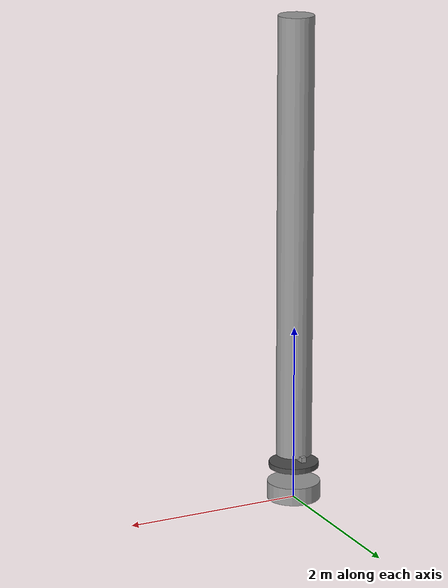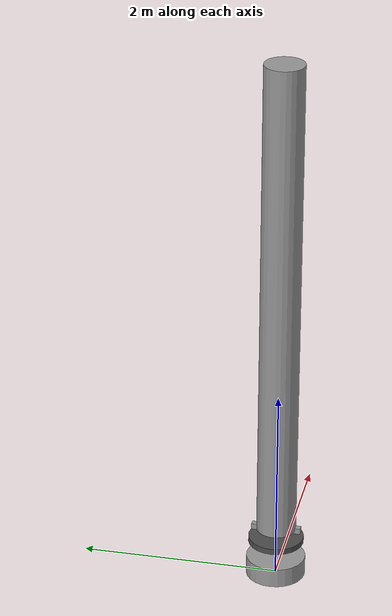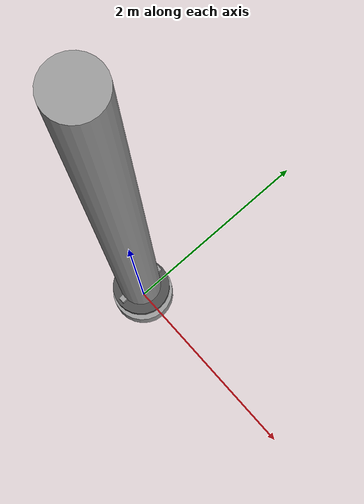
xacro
<?xml version="1.0"?>
<robot name="underwater_spotlight_gimbal" xmlns:xacro="http://www.ros.org/wiki/xacro">

  <!-- Optional parameters -->
  <xacro:arg name="use_ignition" default="false"/>
  <xacro:property name="ns" value="/spotlight"/>

  <!-- Materials -->
  <material name="Grey"><color rgba="0.6 0.6 0.6 1.0"/></material>
  <material name="DarkGrey"><color rgba="0.3 0.3 0.3 1.0"/></material>

  <!-- 1) base_link -->
  <link name="base_link">
    <inertial>
      <origin xyz="0 0 0" rpy="0 0 0"/>
      <mass value="1.0"/>
      <inertia ixx="0.01" ixy="0" ixz="0" iyy="0.01" iyz="0" izz="0.01"/>
    </inertial>
    <visual>
      <origin xyz="0 0 0.1" rpy="0 0 0"/>
      <geometry><cylinder radius="0.3" length="0.2"/></geometry>
      <material name="Grey"/>
    </visual>
    <collision>
      <origin xyz="0 0 0.1" rpy="0 0 0"/>
      <geometry><cylinder radius="0.3" length="0.2"/></geometry>
    </collision>
  </link>

  <!-- 2) yaw_link -->
  <link name="yaw_link">
    <inertial>
      <origin xyz="0 0 0.2" rpy="0 0 0"/>
      <mass value="0.5"/>
      <inertia ixx="0.005" ixy="0" ixz="0" iyy="0.005" iyz="0" izz="0.005"/>
    </inertial>
    <visual>
      <origin xyz="0 0 0.2" rpy="0 0 0"/>
      <geometry><cylinder radius="0.28" length="0.06"/></geometry>
      <material name="DarkGrey"/>
    </visual>
    <collision>
      <origin xyz="0 0 0.2" rpy="0 0 0"/>
      <geometry><cylinder radius="0.28" length="0.06"/></geometry>
    </collision>
  </link>

  <!-- 3) pitch_link -->
  <link name="pitch_link">
    <inertial>
      <origin xyz="0 0 0.26" rpy="0 0 0"/>
      <mass value="0.3"/>
      <inertia ixx="0.003" ixy="0" ixz="0" iyy="0.003" iyz="0" izz="0.003"/>
    </inertial>
    <visual>
      <origin xyz="0 0 0.26" rpy="0 0 0"/>
      <geometry><box size="0.06 0.5 0.06"/></geometry>
      <material name="Grey"/>
    </visual>
    <collision>
      <origin xyz="0 0 0.26" rpy="0 0 0"/>
      <geometry><box size="0.06 0.5 0.06"/></geometry>
    </collision>
  </link>

  <!-- 4) spotlight_link (lamp body) -->
  <link name="spotlight_link">
    <inertial>
      <origin xyz="0 0 0.26" rpy="0 0 0"/>
      <mass value="1.0"/>
      <inertia ixx="0.02" ixy="0" ixz="0" iyy="0.02" iyz="0" izz="0.02"/>
    </inertial>
    <visual>
      <origin xyz="0 0 2.76" rpy="0 0 0"/> <!-- length 5.0, center at 2.5, raised an extra 0.26 above pitch_link, total 2.76 -->
      <geometry><cylinder radius="0.2" length="5.0"/></geometry>
      <material name="Grey"/>
    </visual>
    <collision>
      <origin xyz="0 0 2.76" rpy="0 0 0"/>
      <geometry><cylinder radius="0.2" length="5.0"/></geometry>
    </collision>
  </link>

  <!-- joints -->
  <!-- yaw (rotation about the Z axis) -->
  <joint name="base_yaw_joint" type="revolute">
    <parent link="base_link"/>
    <child link="yaw_link"/>
    <origin xyz="0 0 0.2" rpy="0 0 0"/>
    <axis xyz="0 0 1"/>
    <limit lower="-3.14159" upper="3.14159" effort="10" velocity="2.0"/>
    <dynamics damping="0.1" friction="0.0"/>
  </joint>

  <!-- pitch (rotation about the Y axis) -->
  <joint name="head_pitch_joint" type="revolute">
    <parent link="yaw_link"/>
    <child link="pitch_link"/>
    <origin xyz="0 0 0.06" rpy="0 0 0"/> <!-- fine adjustment from the top of yaw_link to the pitch_link axis -->
    <axis xyz="0 1 0"/>
    <limit lower="-1.2" upper="1.2" effort="10" velocity="2.0"/>
    <dynamics damping="0.1" friction="0.0"/>
  </joint>

  <!-- Fix the lamp body -->
  <joint name="pitch_to_spotlight" type="fixed">
    <parent link="pitch_link"/>
    <child link="spotlight_link"/>
    <origin xyz="0 0 0" rpy="0 0 0"/>
  </joint>

<!-- Gazebo control plugin -->
<gazebo>
  <plugin name="gazebo_ros_control" filename="libgazebo_ros_control.so">
    <robotNamespace>${ns}</robotNamespace>
  </plugin>
</gazebo>

<!-- transmissions, parsed by gazebo_ros_control -->
<transmission name="base_yaw_trans">
  <type>transmission_interface/SimpleTransmission</type>
  <joint name="base_yaw_joint">
    <hardwareInterface>hardware_interface/EffortJointInterface</hardwareInterface>
  </joint>
  <actuator name="base_yaw_motor">
    <mechanicalReduction>1</mechanicalReduction>
  </actuator>
</transmission>

<transmission name="head_pitch_trans">
  <type>transmission_interface/SimpleTransmission</type>
  <joint name="head_pitch_joint">
    <hardwareInterface>hardware_interface/EffortJointInterface</hardwareInterface>
  </joint>
  <actuator name="head_pitch_motor">
    <mechanicalReduction>1</mechanicalReduction>
  </actuator>
</transmission>

  <!-- Gazebo appearance materials (optional) -->
  <gazebo reference="base_link"><material>Gazebo/Grey</material></gazebo>
  <gazebo reference="yaw_link"><material>Gazebo/DarkGrey</material></gazebo>
  <gazebo reference="pitch_link"><material>Gazebo/Grey</material></gazebo>
<gazebo reference="spotlight_link">
  <material>Gazebo/Grey</material>

  <!-- Must include the name attribute -->
  <light name="spotlight_beam" type="spot">
    <pose>0 0 0.3 0 0 0</pose>
    <diffuse>1 1 1 1</diffuse>
    <specular>0.3 0.3 0.3 1</specular>
    <!-- Attenuation parameters must be complete and reasonable -->
    <attenuation>
      <range>30</range>
      <constant>0.2</constant>
      <linear>0.01</linear>
      <quadratic>0.001</quadratic>
    </attenuation>
    <direction>0 0 1</direction>
    <spot>
      <inner_angle>0.2</inner_angle>
      <outer_angle>0.7</outer_angle>
      <falloff>0.7</falloff>
    </spot>
    <cast_shadows>true</cast_shadows>
  </light>
</gazebo>

</robot>
